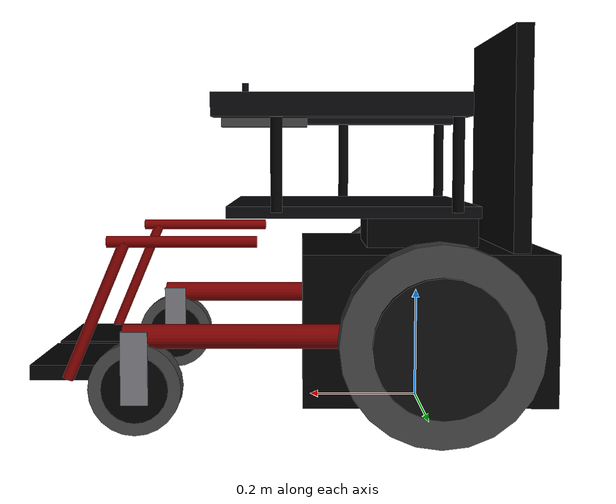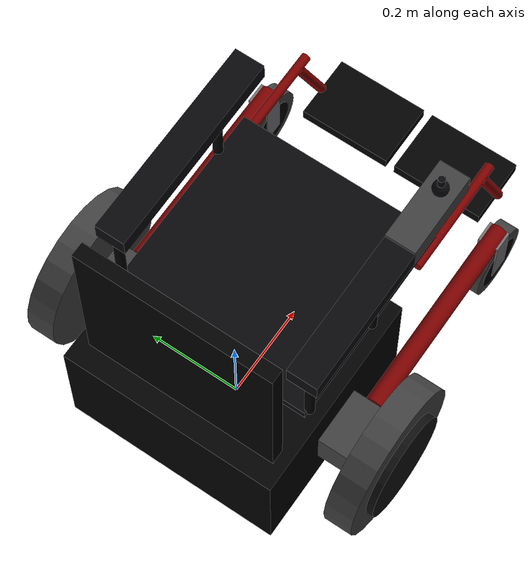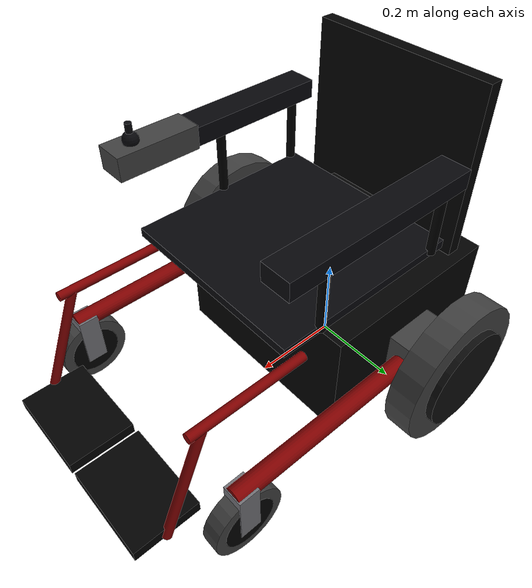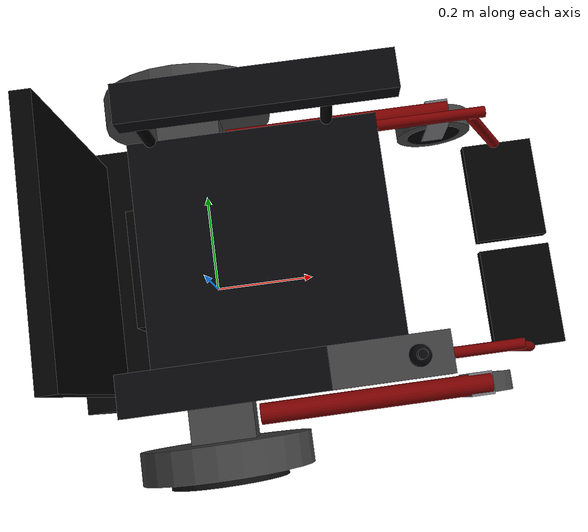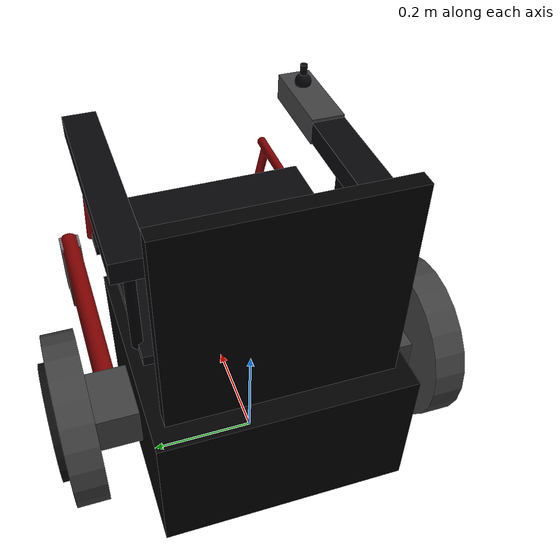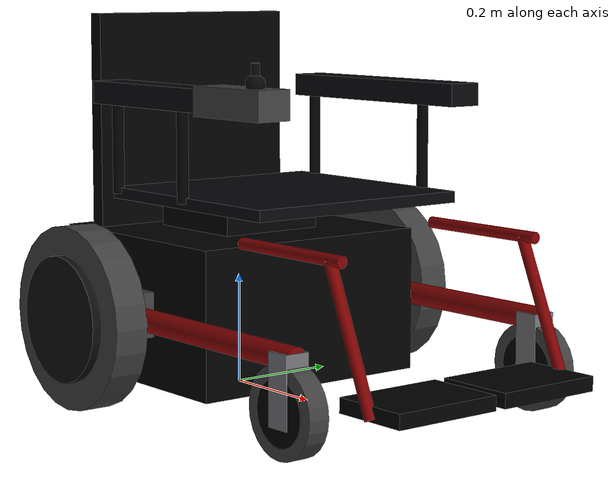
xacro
<?xml version="1.0"?>
<robot name="sara_v1" xmlns:xacro="http://www.ros.org/wiki/xacro" >
  <xacro:property name="pi" value="3.14159265358979" />

<!-- Tamano bateria entre las dos ruedas -->
  <xacro:property name="long_bateria" value="0.4318" />
  <xacro:property name="ancho_bateria" value="0.46" />
  <xacro:property name="altura_bateria" value="0.26" />
  <xacro:property name="separacion_bateria" value="0.03" />

<!-- Link base-->
 <link name="base_link">
  </link>
<!-- Main bateria-->
  <!-- link de la bateria -->
  <link name="bateria">
    <visual>
      <geometry>
	<box size="${long_bateria} ${ancho_bateria} ${altura_bateria}"/>
      </geometry>
      <material name="black">
	<color rgba="0 0 0 1"/>
      </material>
    </visual>
  </link>

<!--Union bateria y base. El centro de la bat esta 0.04445 mas alto del centro de la bateria -->
  <joint name="base_to_bateria" type="fixed">
    <parent link="base_link"/>
    <child link="bateria"/>
    <origin xyz="0 0 ${altura_bateria/2.0+separacion_bateria}"/>
  </joint>
 <!-- Link elevacion asiento -->
  <link name="elev_asiento">
    <visual>
      <geometry>
	<box size="0.2 0.2 0.15"/>
      </geometry>
      <material name="black">
	<color rgba="0 0 0 1"/>
      </material>
    </visual>
  </link>
  <!-- Link elevacion asiento -->
  <joint name="bateria_to_elev_asiento" type="fixed">
    <parent link="bateria"/>
    <child link="elev_asiento"/>
    <origin xyz="0 0 ${altura_bateria/2.0}"/>
  </joint>
<!-- MOTORES Y RUEDAS -->
  <xacro:property name="radio_rueda" value="0.16" />
  <xacro:property name="anchura_rueda" value="0.06" />
  <xacro:property name="radio_eje" value="0.11" />
  <xacro:property name="anchura_eje" value="0.05" />
  <xacro:property name="long_motor" value="0.12" />
  <xacro:property name="radio_motor" value="0.08" />
  <xacro:property name="anchura_motor" value="0.08" />
  <!-- Hacemos un macro para crear los motores y ruedas -->
<xacro:macro name="motoryruedas" params="lado posicion">
  <!-- Link para motores ambos lados -->
      <link name="motor_${lado}">
      <visual>
	<geometry>
	  <box size="${long_motor} ${anchura_motor} ${radio_motor}"/>
	</geometry>
	<origin xyz="0 0 0" rpy="0 0 0"/>
	<material name="motor">
	  <color rgba="0.25 0.25 0.25 1"/>
	</material>
      </visual>
    </link>
<!-- union motores con la bateria -->
    <joint name="bateria_to_motor_${lado}" type="fixed">
      <parent link="bateria"/>
      <child link="motor_${lado}"/>
      <origin xyz="0 ${posicion*(ancho_bateria/2.0+anchura_motor/2.0)} 0" rpy="${pi/2} 0 0"/>
    </joint>
 <!--Link Ruedas motores -->
    <link name="rueda_tras_${lado}">
      <visual>
	<geometry>
	  <cylinder length="${anchura_rueda}" radius="${radio_rueda}"/>
	</geometry>
	<origin xyz="0 0 0" rpy="0 0 0"/>
	<material name="rueda_tras">
	  <color rgba="0.25 0.25 0.25 1"/>
	</material>
      </visual>
    </link>
 <!--Union Ruedas motores y motor -->
    <joint name="motor_to_rueda_tras_${lado}" type="fixed">
      <parent link="motor_${lado}"/>
      <child link="rueda_tras_${lado}"/>
      <origin xyz="0 0 ${-posicion*(anchura_motor/2.0+anchura_rueda/2.0)}" rpy="0 0 0"/>
    </joint>
 <!--Link ejes ruedas -->
    <link name="eje_${lado}">
      <visual>
	<geometry>
	  <cylinder length="${anchura_eje}" radius="${radio_eje}"/>
	</geometry>
	<origin xyz="0 0 0" rpy="0 0 0"/>
	<material name="black_eje">
	  <color rgba="0.05 0.05 0.05 1"/>
	</material>
      </visual>
    </link>
    <!--Union ejes con ruedas -->
    <joint name="ruedas_to_eje_${lado}" type="fixed">
      <parent link="rueda_tras_${lado}"/>
      <child link="eje_${lado}"/>
      <origin xyz="0 0 ${-posicion*0.02}" rpy="0 0 0"/>
    </joint>
</xacro:macro>
 <!--Llamamos al macro de los motores y ruedas -->
<xacro:motoryruedas lado="der" posicion="-1" />
<xacro:motoryruedas lado="izq" posicion="1" />
<!--RUEDAS DELANTERAS -->
  <xacro:property name="radio_rueda_del" value="0.0762" />
  <xacro:property name="ancho_rueda_del" value="0.0381" />
  <xacro:property name="radio_eje_rueda_del" value="0.055" />
  <xacro:property name="ancho_eje_rueda_del" value="0.04" />
  <xacro:property name="casterheight" value="0.15" />
  <xacro:property name="long_barra_horiz" value="0.44" />
  <xacro:property name="radio_barra_horiz" value="0.02" />
<!--Macro ruedas delanteras -->
  <xacro:macro name="ruedas_delant" params="lado posicion">
  <!--Barra horizontal ruedas -->
    <link name="barra_horiz_${lado}">
      <visual>
	<geometry>
	  <cylinder length="${long_barra_horiz}" radius="${radio_barra_horiz}"/>
	</geometry>
	<origin xyz="0 0 0" rpy="0 0 0"/>
	<material name="granate">
	  <color rgba="0.5 0 0 1"/>
	</material>
      </visual>
    </link>
  <!--junta entre barra horiz y motor -->
    <joint name="motor_${lado}_to_barra_horiz_${lado}" type="fixed">
      <parent link="motor_${lado}"/>
      <child link="barra_horiz_${lado}"/>
      <origin xyz="${radio_motor+(long_barra_horiz-0.02)/2.0} 0 0" rpy="0 ${-pi/2} 0"/>
    </joint>
  <!--Barra vertical ruedas -->
    <link name="barra_vertical_${lado}">
      <visual>
	<geometry>
	  <cylinder length="0.1" radius="0.02"/>
	</geometry>
	<origin xyz="0 0 0" rpy="0 0 0"/>
	<material name="silver">
	  <color rgba="1 0 0 1"/>
	</material>
      </visual>
    </link>
  <!--junta entre barra vert y motor -->
    <joint name="motor_${lado}_to_barra_vert_${lado}" type="fixed">
      <parent link="barra_horiz_${lado}"/>
      <child link="barra_vertical_${lado}"/>
      <origin xyz="0 ${-0.1/2.0-radio_barra_horiz} ${0.02-long_barra_horiz/2.0}" rpy="${pi/2} 0 0"/>
    </joint>
<!--Soporte ruedas delanteras -->
    <link name="soporte_rueda_${lado}">
      <visual>
	<geometry>
	  <box size="0.04445 0.04445 0.12"/>
	</geometry>
	<origin xyz="0 0 0" rpy="0 0 0"/>
	<material name="gris">
	  <color rgba="0.45 0.45 0.47 1"/>
	</material>
      </visual>
   </link>
<!--junta entre barra vert y soporte -->
    <joint name="barra_vert_to_soporte_${lado}" type="fixed">
      <parent link="barra_vertical_${lado}"/>
      <child link="soporte_rueda_${lado}"/>
      <origin xyz="0 0 -0.02" rpy="0 0 0"/>
    </joint>
<!--Ruedas delanteras -->
    <link name="rueda_del_${lado}">
      <visual>
	<geometry>
	  <cylinder length="${ancho_rueda_del}" radius="${radio_rueda_del}"/>
	</geometry>
	<material name="rueda_del">
	  <color rgba="0.25 0.25 0.25 1"/>
	</material>
      </visual>
    </link>
<!--junta entre soporte y rueda -->
    <joint name="soporte_to_rueda_del_${lado}" type="fixed">
      <parent link="soporte_rueda_${lado}"/>
      <child link="rueda_del_${lado}"/>
      <origin xyz="0 0 0.035" rpy="0 ${pi/2} 0"/>
    </joint>
<!--Ejes ruedas delanteras -->
    <link name="eje_rueda_del_${lado}">
      <visual>
	<geometry>
	  <cylinder length="${ancho_eje_rueda_del}" radius="${radio_eje_rueda_del}"/>
	</geometry>
	<material name="black">
	  <color rgba="0 0 0 1"/>
	</material>
      </visual>
    </link>
 <!--Junta ejes con ruedas delanteras -->
    <joint name="eje_rueda_del_${lado}_to_rueda_del_${lado}" type="fixed">
      <parent link="rueda_del_${lado}"/>
      <child link="eje_rueda_del_${lado}"/>
      <origin xyz="0 0 0" rpy="0 0 0"/>
    </joint>
 </xacro:macro>
<!-- ASIENTO -->
  <xacro:property name="long_asiento" value="0.43" />
  <xacro:property name="ancho_asiento" value="0.43" />
  <xacro:property name="altura_asiento" value="0.02" />
  <xacro:ruedas_delant lado="der" posicion="-1" />
  <xacro:ruedas_delant lado="izq" posicion="1" />

<link name="asiento">
    <visual>
      <geometry>
	<box size="${long_asiento} ${ancho_asiento} ${altura_asiento}"/>
      </geometry>
      <material name="lightblack">
	<color rgba="0.025 0.025 0.04 1"/>
      </material>
    </visual>
  </link>
<!-- Junta asiento y bateria -->
  <joint name="bateria_to_asiento" type="fixed">
    <parent link="bateria"/>
    <child link="asiento"/>
    <origin xyz="0.13 0 0.2"/>
  </joint>
<!-- RESPALDO -->
  <xacro:property name="long_resp" value="0.03" />
  <xacro:property name="ancho_resp" value="0.41" />
  <xacro:property name="altura_resp" value="0.435" />
  <link name="respaldo">
    <visual>
      <geometry>
	<box size="${long_resp} ${ancho_resp} ${altura_resp}"/>
      </geometry>
      <material name="black">
	<color rgba="0 0 0 1"/>
      </material>
    </visual>
  </link>
<!-- Junta respaldo y bateria -->
  <joint name="bateria_to_respaldo" type="fixed">
    <parent link="bateria"/>
    <child link="respaldo"/>
    <origin xyz="${-long_bateria/2+0.06} 0 0.3"/>
  </joint>

<!-- Apoya brazos -->
  <xacro:property name="long_barra_brazos" value="0.18" />
  <xacro:property name="radio_barra_brazos" value="0.01" />
  <xacro:property name="ancho_soporte_brazos" value="0.0635" />
  <xacro:property name="espesor_soporte_brazos" value="0.04" />

  <xacro:macro name="apoya_brazos" params="lado long_soporte_brazos separacion_barras">
<!-- Barras verticales -->
    <link name="barra_brazos_${lado}">
      <visual>
	<geometry>
	  <cylinder length="${long_barra_brazos}" radius="${radio_barra_brazos}"/>
	</geometry>
	<origin xyz="0 0 0" rpy="0 0 0"/>
	<material name="black">
	  <color rgba="0 0 0 1"/>
	</material>
      </visual>
    </link>

    <link name="barra_brazos_tras_${lado}">
      <visual>
	<geometry>
	  <cylinder length="${long_barra_brazos}" radius="${radio_barra_brazos}"/>
	</geometry>
	<origin xyz="0 0 0" rpy="0 0 0"/>
	<material name="black">
	  <color rgba="0 0 0 1"/>
	</material>
      </visual>
    </link>
<!-- Uniones barras delantera con trasera apoyabrazos -->
    <joint name="barra_brazos_to_barra_brazos_tras_${lado}" type="fixed">
      <parent link="barra_brazos_${lado}"/>
      <child link="barra_brazos_tras_${lado}"/>
      <origin xyz="${-separacion_barras} 0 0" rpy="0 0 0"/>
    </joint>
<!-- Soporte apoyabrazos -->
    <link name="soporte_brazos_${lado}">
      <visual>
	<geometry>
	  <box size="${long_soporte_brazos} ${ancho_soporte_brazos} ${espesor_soporte_brazos}"/>
	</geometry>
      <material name="lightblack">
	<color rgba="0.025 0.025 0.04 1"/>
      </material>
      </visual>
    </link>
<!-- Union barra_brazos y soporte apoyabrazos. -->
  <joint name="barra_brazos_to_soporte_brazos_${lado}" type="fixed">
    <parent link="barra_brazos_${lado}"/>
    <child link="soporte_brazos_${lado}"/>
    <origin xyz="${-0.25*long_soporte_brazos} 0 ${long_barra_brazos/2.0}"/>
  </joint>
  </xacro:macro>
  <xacro:property name="long_soporte_der" value="0.3048" />
  <xacro:apoya_brazos lado="izq" long_soporte_brazos="0.4318" separacion_barras="0.3048" />
  <xacro:apoya_brazos lado="der" long_soporte_brazos="${long_soporte_der}" separacion_barras="0.20" />
<!-- Union barras delanteras y asiento -->
  <joint name="asiento_to_barra_brazos_izq" type="fixed">
    <parent link="asiento"/>
    <child link="barra_brazos_izq"/>
    <origin xyz="0.13 ${ancho_asiento/2.0} ${long_barra_brazos/2.0}"/>
  </joint>
  <joint name="asiento_to_barra_brazos_der" type="fixed">
    <parent link="asiento"/>
    <child link="barra_brazos_der"/>
    <origin xyz="0 ${-ancho_asiento/2.0} ${long_barra_brazos/2.0}"/>
  </joint>
<!-- Control Joystick -->
  <link name="joystick">
    <visual>
      <geometry>
	<box size="0.1778 0.0635 0.0508"/>
      </geometry>
      <material name="joystick">
	<color rgba="0.25 0.25 0.25 1"/>
      </material>
    </visual>
  </link>
<!-- Union Joystick y soporte derecho -->
  <joint name="soporte_der_to_joystick" type="fixed">
    <parent link="soporte_brazos_der"/>
    <child link="joystick"/>
    <origin xyz="${long_soporte_der/2.0+0.1778/2.0} 0 0"/>
  </joint>
<!-- Bola joystick -->
  <link name="bola_joystick">
    <visual>
      <geometry>
	<sphere radius="0.01651"/>
      </geometry>
      <material name="lightblack">
	<color rgba="0.025 0.025 0.04 1"/>
      </material>
    </visual>
  </link>
<!-- Union joystick y bola joystick -->
  <joint name="joystick_to_bola" type="fixed">
    <parent link="joystick"/>
    <child link="bola_joystick"/>
    <origin xyz="0.04 0 0.03175"/>
  </joint>
<!-- palo joystick -->
  <link name="joystick_palo">
    <visual>
      <geometry>
	<cylinder length="0.05" radius="0.007"/>
      </geometry>
      <material name="lightblack">
	<color rgba="0.025 0.025 0.04 1"/>
      </material>
    </visual>
  </link>
<!-- Union palo y bola joystick -->
  <joint name="joystick_bola_to_palo" type="fixed">
    <parent link="bola_joystick"/>
    <child link="joystick_palo"/>
    <origin xyz="0 0 0.009525"/>
  </joint>
<!-- Reposa piernas -->
  <xacro:property name="long_reposapiernas" value="0.2032" />
  <xacro:property name="altura_reposapiernas" value="0.254" />
  <xacro:property name="prof_soporte_pies" value="0.14" />
  <xacro:property name="ancho_soporte_pies" value="0.20" />
  <xacro:property name="radio_tubo_reposapiernas" value="0.01" />

  <xacro:macro name="reposa_piernas" params="lado posicion">
    <!-- Reposa piernas horiz -->
    <link name="reposapiernas_horiz_${lado}">
      <visual>
	<geometry>
	  <cylinder length="${altura_reposapiernas}" radius="${radio_tubo_reposapiernas}"/>
	</geometry>
	<origin xyz="0 0 0" rpy="0 0 0"/>
	<material name="granate">
	  <color rgba="0.5 0 0 1"/>
	</material>
      </visual>
    </link>
    <!-- Union reposa piernas horiz y bateria -->
    <joint name="bateria_to_reposapiernas_horiz_${lado}" type="fixed">
      <parent link="bateria"/>
      <child link="reposapiernas_horiz_${lado}"/>
      <origin xyz="0.42 ${posicion*0.21} 0.15" rpy="0 ${pi/2} 0"/>
    </joint>
    <!-- Reposa piernas horiz -->
    <link name="reposapiernas_vert_${lado}">
      <visual>
	<geometry>
	  <cylinder length="${altura_reposapiernas}" radius="${radio_tubo_reposapiernas}"/>
	</geometry>
	<origin xyz="0 0 ${altura_reposapiernas/2.0}" rpy="0 0 0"/>
	<material name="granate">
	  <color rgba="0.5 0 0 1"/>
	</material>
      </visual>
    </link>
    <!-- Union reposa piernas horiz y vert -->
    <joint name="reposapiernas_vert__to_horiz_${lado}" type="fixed">
      <parent link="reposapiernas_horiz_${lado}"/>
      <child link="reposapiernas_vert_${lado}"/>
      <origin xyz="0 0 ${long_reposapiernas/2.0-radio_tubo_reposapiernas/2.0}" rpy="0 ${pi/2-0.4} 0"/>
    </joint>
    <!-- soporte pies reposa piernas-->
    <link name="soporte_pies_${lado}">
      <visual>
	<geometry>
	  <box size="${prof_soporte_pies} ${ancho_soporte_pies} 0.0254"/>
	</geometry>
	<origin xyz="0 0 0" rpy="0 0 0"/>
	<material name="black">
	  <color rgba="0 0 0 1"/>
	</material>
      </visual>
    </link>
     <!-- Union soporte pies y reposapiernas vertical-->
    <joint name="reposapiernas_vert_to_soporte_pies_${lado}" type="fixed">
      <parent link="reposapiernas_vert_${lado}"/>
      <child link="soporte_pies_${lado}"/>
      <origin xyz="0 ${-posicion*ancho_soporte_pies/2.0} ${long_reposapiernas+0.04}" rpy="0 0.4 0"/>
    </joint>
  </xacro:macro>
  <xacro:reposa_piernas lado="der" posicion="-1" />
  <xacro:reposa_piernas lado="izq" posicion="1" />
</robot>
